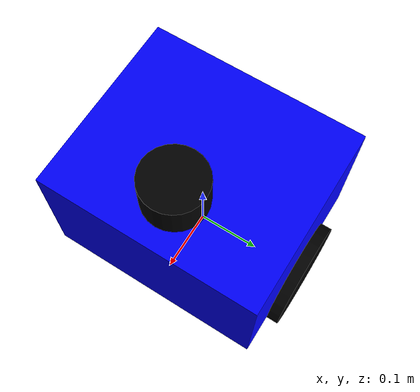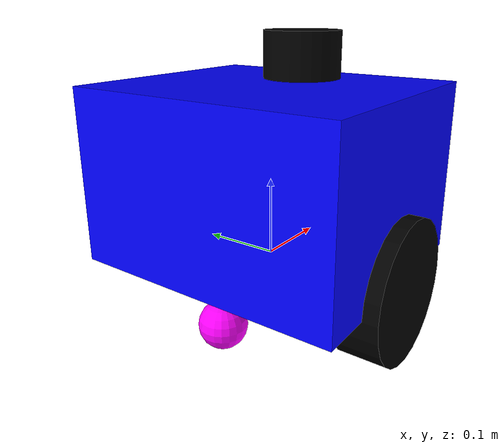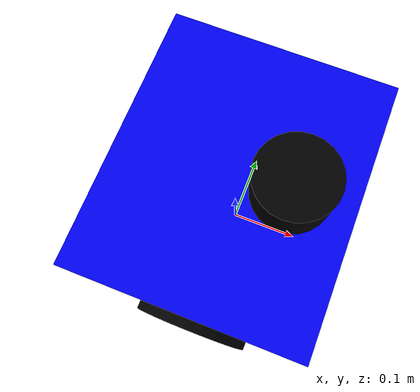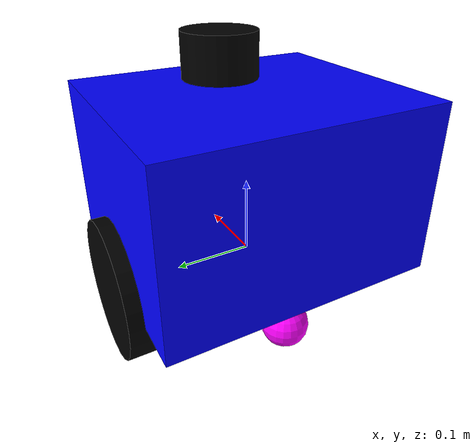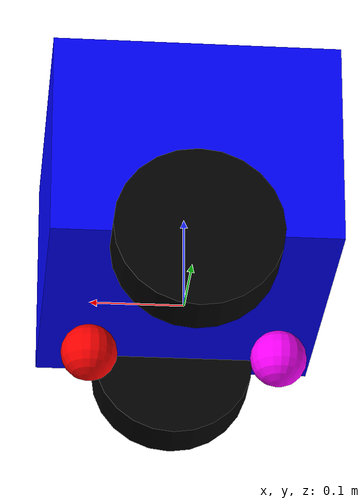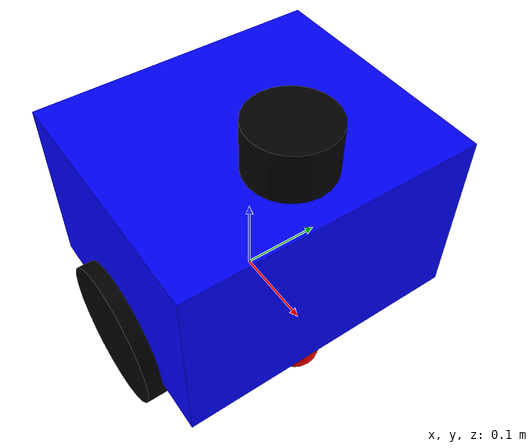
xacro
<?xml version = "1.0"?>
<robot name="sahabat_robot" xmlns:xacro="http://www.ros.org/wiki/xacro">

<!-- Robot Parameters (edit these to match your robot)  -->

<!-- Wheel dimensions: 175mm diameter hoverboard wheels -->
<xacro:property name="wheel_radius" value="0.0875" />   <!-- 175mm / 2 = 87.5mm -->
<xacro:property name="wheel_width" value="0.057" />     <!-- Wheel width/thickness -->
<xacro:property name="wheel_base" value="0.33" />       <!-- Distance between wheels (center to center) -->

<!-- Caster wheel radius -->
<xacro:property name="caster_radius" value="0.03" />

<!-- Body dimensions -->
<xacro:property name="body_length" value="0.3" />
<xacro:property name="body_width" value="0.35" />
<xacro:property name="body_height" value="0.22" />

<!-- Camera arguments -->
<xacro:arg name="camera_name" default="zed2i" />
<xacro:arg name="camera_model" default="zed2i" />
<xacro:arg name="use_zed_localization" default="true" />

<!-- Include ZED camera macro -->
<xacro:include filename="$(find zed_wrapper)/urdf/zed_macro.urdf.xacro" />

<!--BASE LINK-->
<!-- base_link is at wheel axle height (wheel_radius above ground) -->

<link name = "base_link">

</link>

<!-- IMU LINK -->
<!-- The IMU driver publishes in imu_link; keep its aligned sensor frame in TF. -->
<joint name="imu_joint" type="fixed">
    <parent link="base_link"/>
    <child link="imu_link"/>
    <origin xyz="0 0 0" rpy="0 0 0"/>
</joint>

<link name="imu_link"/>

<!--BASEFOOTPRINT LINK-->
<!-- base_footprint is the ground projection of the robot (at Z=0) -->

<joint name="basefootprint_joint" type="fixed">
    <parent link="base_link"/>
    <child link="base_footprint"/>
    <origin xyz="0 0 ${-wheel_radius}" rpy = "0 0 0"/>
</joint>

<link name="base_footprint">

</link>

<!--BODY LINK-->

<joint name = "body_joint" type = "fixed" >
    <parent link = "base_link"/>
    <child link = "body_link"/>
    <origin xyz = "-0.15 0 0" />
</joint>

<link name = "body_link">
    <visual>
        <origin xyz = "0.15 0 0.11" />
        <geometry>
            <box size = "${body_length} ${body_width} ${body_height}"/>
        </geometry>

        <material name = "blue">
            <color rgba = "0 0 1 1"/>
        </material>
    </visual>

    <collision>
        <origin xyz = "0.15 0 0.11" />
       <geometry>
            <box size = "${body_length} ${body_width} ${body_height}"/>
        </geometry>
    </collision>

    <inertial>
        <mass value = "5.0"/>
        <inertia ixx="0.1" ixy="0.0" ixz="0.0" iyy="0.1" iyz="0.0" izz="0.1"/>
    </inertial>
</link>

<!--LEFT WHEEL-->
<!-- Wheels are at base_link height (Z=0), which is the axle height -->

<joint name = "left_wheel_joint" type = "continuous">

    <parent link= "base_link"/>
    <child link= "left_wheel_link"/>
    <origin xyz = "0 ${wheel_base/2} 0" rpy = "-1.571 3.142 0"/>
    <axis xyz = "0 0 1"/>

</joint>

<link name = "left_wheel_link">
    <visual>
        <geometry>
            <cylinder length = "${wheel_width}" radius = "${wheel_radius}"/>
        </geometry>

        <material name = "black">
            <color rgba = "0 0 0 1"/>
        </material>
    </visual>

    <collision>
        <geometry>
            <cylinder length = "${wheel_width}" radius = "${wheel_radius}"/>
        </geometry>
    </collision>

    <inertial>
        <mass value = "3.0"/>
        <inertia ixx="0.01" ixy="0.0" ixz="0.0" iyy="0.01" iyz="0.0" izz="0.01"/>
    </inertial>
</link>

<!--RIGHT WHEEL-->

<joint name = "right_wheel_joint" type = "continuous">

    <parent link = "base_link"/>
    <child link = "right_wheel_link"/>
    <origin xyz = "0 ${-wheel_base/2} 0" rpy = "1.571 0 0 "/>
    <axis xyz = "0 0 -1"/>

</joint>

<link name = "right_wheel_link">

    <visual>
        <geometry>
            <cylinder length = "${wheel_width}" radius = "${wheel_radius}"/>
        </geometry>

        <material name = "black">
            <color rgba = "0 0 0 1"/>
        </material>
    </visual>

    <collision>
        <geometry>
            <cylinder length = "${wheel_width}" radius = "${wheel_radius}"/>
        </geometry>
    </collision>

    <inertial>
        <mass value = "3.0"/>
        <inertia ixx="0.01" ixy="0.0" ixz="0.0" iyy="0.01" iyz="0.0" izz="0.01"/>
    </inertial>
</link>

<!-- FRONT CASTER WHEEL-->
<!-- Caster bottom should touch ground: Z = -(wheel_radius - caster_radius) -->

<link name = "front_caster_wheel_link" >
    <visual>
        <geometry>
            <sphere radius= "${caster_radius}"/>
        </geometry>

        <material name = "red" >
            <color rgba = "1 0 0 1"/>
        </material>
    </visual>

    <collision>
        <geometry>
            <sphere radius= "${caster_radius}"/>
        </geometry>
    </collision>

</link>

<joint name = "front_caster_wheel_joint" type="fixed">
    <parent link = "body_link"/>
    <child link = "front_caster_wheel_link"/>
    <origin xyz = "0.25 0 ${-(wheel_radius - caster_radius)}" />
</joint>

<!-- REAR CASTER WHEEL-->
<!-- Caster bottom should touch ground: Z = -(wheel_radius - caster_radius) -->

<link name = "rear_caster_wheel_link" >
    <visual>
        <geometry>
            <sphere radius= "${caster_radius}"/>
        </geometry>

        <material name = "purple" >
            <color rgba = "1 0 1 1"/>
        </material>
    </visual>

    <collision>
        <geometry>
            <sphere radius= "${caster_radius}"/>
        </geometry>
    </collision>
</link>

<joint name = "rear_caster_wheel_joint" type="fixed">
    <parent link = "body_link"/>
    <child link = "rear_caster_wheel_link"/>
    <origin xyz = "0.05 0 ${-(wheel_radius - caster_radius)}" />
</joint>

    <!-- LiDAR componenets-->

<joint name="lidar_joint" type="fixed">
    <parent link="body_link"/>
    <child link="lidar_link"/>
    <origin xyz="0.22 0 0.25" rpy="3.14 0 3.14"/>
</joint>

<link name="lidar_link">
    <visual>
        <geometry>
            <cylinder radius="0.05" length="0.06"/>
        </geometry>
        <material name="Black">
            <color rgba="0 0 0 1"/>
        </material>
    </visual>
    <collision>
        <geometry>
            <cylinder radius="0.05" length="0.06"/>
        </geometry>
    </collision>
    <inertial>
        <mass value="0.1"/>
        <origin xyz="0 0 0" rpy="0 0 0"/>
        <inertia ixx="0.01" ixy="0" ixz="0" iyy="0.01" iyz="0" izz="0.01"/>
    </inertial>
</link>

</robot>
